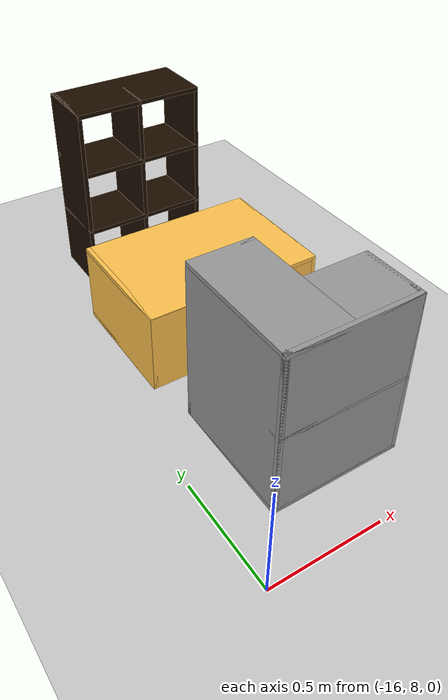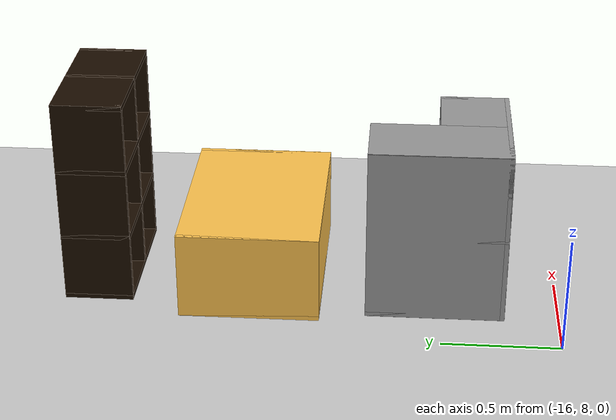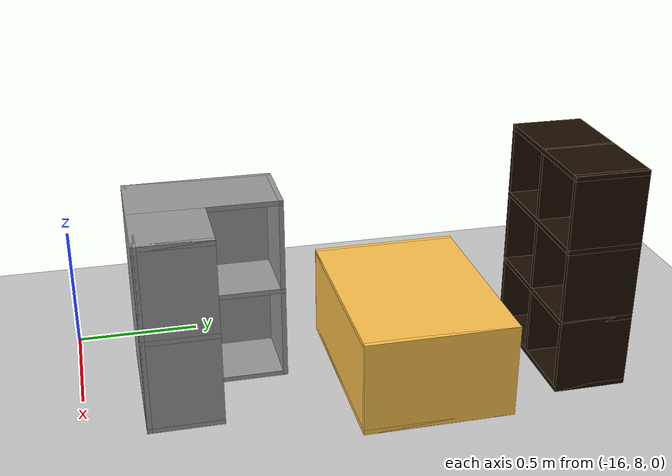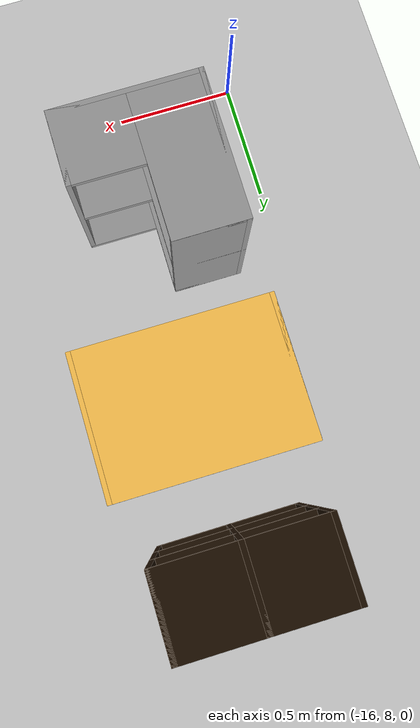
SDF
<sdf version="1.6">
 <world name="default">
  <model name="ground_plane">
   <static>1</static>
   <link name="link">
    <collision name="collision">
     <geometry><plane><normal>0 0 1</normal><size>100 100</size></plane></geometry>
     <surface><friction><ode><mu>100</mu><mu2>50</mu2></ode></friction></surface>
    </collision>
    <visual name="visual">
     <cast_shadows>0</cast_shadows>
     <geometry><plane><normal>0 0 1</normal><size>100 100</size></plane></geometry>
     <material>
      <script><uri>file://media/materials/scripts/gazebo.material</uri><name>Gazebo/Grey</name></script>
     </material>
    </visual>
   </link>
  </model>
  <model name="6_Cube_StorageE">
   <link name="Wall_0">
    <pose>0 0 0.01 0 -0 0</pose>
    <inertial>
     <mass>1.6201</mass>
     <inertia><ixx>0.0119</ixx><iyy>0.0631</iyy><izz>0.0513</izz><ixy>0</ixy><ixz>0</ixz><iyz>0</iyz></inertia>
    </inertial>
    <collision name="Wall_0_Collision"><geometry><box><size>0.616 0.296 0.02</size></box></geometry></collision>
    <visual name="Wall_0_Visual">
     <geometry><box><size>0.616 0.296 0.02</size></box></geometry>
     <material>
      <script><uri>file://media/materials/scripts/gazebo.material</uri><name>Gazebo/Grey</name></script>
      <ambient>0.105882 0.0509804 0 1</ambient>
     </material>
    </visual>
   </link>
   <joint name="0_2" type="fixed">
    <pose>-0.308 0 0 0 -0 0</pose>
    <parent>Wall_2</parent>
    <child>Wall_0</child>
    <axis>
     <xyz>1 0 0</xyz>
     <use_parent_model_frame>0</use_parent_model_frame>
     <limit><lower>-1e+16</lower><upper>1e+16</upper></limit>
    </axis>
   </joint>
   <joint name="0_12" type="fixed">
    <parent>Wall_12</parent>
    <child>Wall_0</child>
    <axis>
     <xyz>0 0 1</xyz>
     <use_parent_model_frame>0</use_parent_model_frame>
     <limit><lower>-1e+16</lower><upper>1e+16</upper></limit>
    </axis>
   </joint>
   <joint name="0_4" type="fixed">
    <pose>0.308 0 0 0 -0 0</pose>
    <parent>Wall_4</parent>
    <child>Wall_0</child>
    <axis>
     <xyz>1 0 0</xyz>
     <use_parent_model_frame>0</use_parent_model_frame>
     <limit><lower>-1e+16</lower><upper>1e+16</upper></limit>
    </axis>
   </joint>
   <link name="Wall_10">
    <pose>0 0 0.61 0 -0 0</pose>
    <inertial>
     <mass>1.6201</mass>
     <inertia><ixx>0.0119</ixx><iyy>0.0631</iyy><izz>0.0513</izz><ixy>0</ixy><ixz>0</ixz><iyz>0</iyz></inertia>
    </inertial>
    <collision name="Wall_10_Collision"><geometry><box><size>0.616 0.296 0.02</size></box></geometry></collision>
    <visual name="Wall_10_Visual">
     <geometry><box><size>0.616 0.296 0.02</size></box></geometry>
     <material>
      <script><uri>file://media/materials/scripts/gazebo.material</uri><name>Gazebo/Grey</name></script>
      <ambient>0.105882 0.0509804 0 1</ambient>
     </material>
    </visual>
   </link>
   <joint name="10_2" type="fixed">
    <pose>-0.308 0 0 0 -0 0</pose>
    <parent>Wall_2</parent>
    <child>Wall_10</child>
    <axis>
     <xyz>1 0 0</xyz>
     <use_parent_model_frame>0</use_parent_model_frame>
     <limit><lower>-1e+16</lower><upper>1e+16</upper></limit>
    </axis>
   </joint>
   <joint name="10_12" type="fixed">
    <parent>Wall_12</parent>
    <child>Wall_10</child>
    <axis>
     <xyz>0 0 1</xyz>
     <use_parent_model_frame>0</use_parent_model_frame>
     <limit><lower>-1e+16</lower><upper>1e+16</upper></limit>
    </axis>
   </joint>
   <joint name="10_4" type="fixed">
    <pose>0.308 0 0 0 -0 0</pose>
    <parent>Wall_4</parent>
    <child>Wall_10</child>
    <axis>
     <xyz>1 0 0</xyz>
     <use_parent_model_frame>0</use_parent_model_frame>
     <limit><lower>-1e+16</lower><upper>1e+16</upper></limit>
    </axis>
   </joint>
   <link name="Wall_12">
    <pose>0 0 0.4575 0 -0 0</pose>
    <inertial>
     <mass>2.4065</mass>
     <inertia><ixx>0.0177</ixx><iyy>0.1855</iyy><izz>0.168</izz><ixy>0</ixy><ixz>0</ixz><iyz>0</iyz></inertia>
    </inertial>
    <collision name="Wall_12_Collision"><geometry><box><size>0.02 0.296 0.915</size></box></geometry></collision>
    <visual name="Wall_12_Visual">
     <geometry><box><size>0.02 0.296 0.915</size></box></geometry>
     <material>
      <script><uri>file://media/materials/scripts/gazebo.material</uri><name>Gazebo/Grey</name></script>
      <ambient>0.105882 0.0509804 0 1</ambient>
     </material>
    </visual>
   </link>
   <link name="Wall_2">
    <pose>-0.298 0 0.4575 0 -0 0</pose>
    <inertial>
     <mass>2.4065</mass>
     <inertia><ixx>0.0177</ixx><iyy>0.1855</iyy><izz>0.168</izz><ixy>0</ixy><ixz>0</ixz><iyz>0</iyz></inertia>
    </inertial>
    <collision name="Wall_2_Collision"><geometry><box><size>0.02 0.296 0.915</size></box></geometry></collision>
    <visual name="Wall_2_Visual">
     <geometry><box><size>0.02 0.296 0.915</size></box></geometry>
     <material>
      <script><uri>file://media/materials/scripts/gazebo.material</uri><name>Gazebo/Grey</name></script>
      <ambient>0.105882 0.0509804 0 1</ambient>
     </material>
    </visual>
   </link>
   <link name="Wall_4">
    <pose>0.298 0 0.4575 0 -0 0</pose>
    <inertial>
     <mass>2.4065</mass>
     <inertia><ixx>0.0177</ixx><iyy>0.1855</iyy><izz>0.168</izz><ixy>0</ixy><ixz>0</ixz><iyz>0</iyz></inertia>
    </inertial>
    <collision name="Wall_4_Collision"><geometry><box><size>0.02 0.296 0.915</size></box></geometry></collision>
    <visual name="Wall_4_Visual">
     <geometry><box><size>0.02 0.296 0.915</size></box></geometry>
     <material>
      <script><uri>file://media/materials/scripts/gazebo.material</uri><name>Gazebo/Grey</name></script>
      <ambient>0.105882 0.0509804 0 1</ambient>
     </material>
    </visual>
   </link>
   <link name="Wall_6">
    <pose>0 0 0.905 0 -0 0</pose>
    <inertial>
     <mass>1.6201</mass>
     <inertia><ixx>0.0119</ixx><iyy>0.0631</iyy><izz>0.0513</izz><ixy>0</ixy><ixz>0</ixz><iyz>0</iyz></inertia>
    </inertial>
    <collision name="Wall_6_Collision"><geometry><box><size>0.616 0.296 0.02</size></box></geometry></collision>
    <visual name="Wall_6_Visual">
     <geometry><box><size>0.616 0.296 0.02</size></box></geometry>
     <material>
      <script><uri>file://media/materials/scripts/gazebo.material</uri><name>Gazebo/Grey</name></script>
      <ambient>0.105882 0.0509804 0 1</ambient>
     </material>
    </visual>
   </link>
   <joint name="6_2" type="fixed">
    <pose>-0.308 0 0 0 -0 0</pose>
    <parent>Wall_2</parent>
    <child>Wall_6</child>
    <axis>
     <xyz>2 0 0</xyz>
     <use_parent_model_frame>0</use_parent_model_frame>
     <limit><lower>-1e+16</lower><upper>1e+16</upper></limit>
    </axis>
   </joint>
   <joint name="6_12" type="fixed">
    <parent>Wall_12</parent>
    <child>Wall_6</child>
    <axis>
     <xyz>0 0 1</xyz>
     <use_parent_model_frame>0</use_parent_model_frame>
     <limit><lower>-1e+16</lower><upper>1e+16</upper></limit>
    </axis>
   </joint>
   <joint name="6_4" type="fixed">
    <pose>0.308 0 0 0 -0 0</pose>
    <parent>Wall_4</parent>
    <child>Wall_6</child>
    <axis>
     <xyz>1 0 0</xyz>
     <use_parent_model_frame>0</use_parent_model_frame>
     <limit><lower>-1e+16</lower><upper>1e+16</upper></limit>
    </axis>
   </joint>
   <link name="Wall_8">
    <pose>0 0 0.305 0 -0 0</pose>
    <inertial>
     <mass>1.6201</mass>
     <inertia><ixx>0.0119</ixx><iyy>0.0631</iyy><izz>0.0513</izz><ixy>0</ixy><ixz>0</ixz><iyz>0</iyz></inertia>
    </inertial>
    <collision name="Wall_8_Collision"><geometry><box><size>0.616 0.296 0.02</size></box></geometry></collision>
    <visual name="Wall_8_Visual">
     <geometry><box><size>0.616 0.296 0.02</size></box></geometry>
     <material>
      <script><uri>file://media/materials/scripts/gazebo.material</uri><name>Gazebo/Grey</name></script>
      <ambient>0.105882 0.0509804 0 1</ambient>
     </material>
    </visual>
   </link>
   <joint name="8_2" type="fixed">
    <pose>-0.308 0 0 0 -0 0</pose>
    <parent>Wall_2</parent>
    <child>Wall_8</child>
    <axis>
     <xyz>1 0 0</xyz>
     <use_parent_model_frame>0</use_parent_model_frame>
     <limit><lower>-1e+16</lower><upper>1e+16</upper></limit>
    </axis>
   </joint>
   <joint name="8_12" type="fixed">
    <parent>Wall_12</parent>
    <child>Wall_8</child>
    <axis>
     <xyz>0 0 1</xyz>
     <use_parent_model_frame>0</use_parent_model_frame>
     <limit><lower>-1e+16</lower><upper>1e+16</upper></limit>
    </axis>
   </joint>
   <joint name="8_4" type="fixed">
    <pose>0.308 0 0 0 -0 0</pose>
    <parent>Wall_4</parent>
    <child>Wall_8</child>
    <axis>
     <xyz>1 0 0</xyz>
     <use_parent_model_frame>0</use_parent_model_frame>
     <limit><lower>-1e+16</lower><upper>1e+16</upper></limit>
    </axis>
   </joint>
   <static>1</static>
   <pose>-15.4401 9.97642 0 0 -0 0</pose>
  </model>
  <model name="Fridge_Cabinet_33x15">
   <link name="Wall_17">
    <pose>0 0 0.01 0 -0 0</pose>
    <inertial>
     <mass>4.8627</mass>
     <inertia><ixx>0.146</ixx><iyy>0.4318</iyy><izz>0.2861</izz><ixy>0</ixy><ixz>0</ixz><iyz>0</iyz></inertia>
    </inertial>
    <collision name="Wall_17_Collision"><geometry><box><size>0.84 0.6 0.02</size></box></geometry></collision>
    <visual name="Wall_17_Visual">
     <geometry><box><size>0.84 0.6 0.02</size></box></geometry>
     <material>
      <script><uri>file://media/materials/scripts/gazebo.material</uri><name>Gazebo/Grey</name></script>
      <ambient>1 0.764706 0.305882 1</ambient>
     </material>
    </visual>
   </link>
   <joint name="17_21" type="fixed">
    <pose>0.42 0 0 0 -0 0</pose>
    <parent>Wall_21</parent>
    <child>Wall_17</child>
    <axis>
     <xyz>1 0 0</xyz>
     <use_parent_model_frame>0</use_parent_model_frame>
     <limit><lower>-1e+16</lower><upper>1e+16</upper></limit>
    </axis>
   </joint>
   <joint name="17_19" type="fixed">
    <pose>-0.42 0 0 0 -0 0</pose>
    <parent>Wall_19</parent>
    <child>Wall_17</child>
    <axis>
     <xyz>1 0 0</xyz>
     <use_parent_model_frame>0</use_parent_model_frame>
     <limit><lower>-1e+16</lower><upper>1e+16</upper></limit>
    </axis>
   </joint>
   <joint name="17_25" type="fixed">
    <pose>0 -0.3 0 0 -0 0</pose>
    <parent>Wall_25</parent>
    <child>Wall_17</child>
    <axis>
     <xyz>0 1 0</xyz>
     <use_parent_model_frame>0</use_parent_model_frame>
     <limit><lower>-1e+16</lower><upper>1e+16</upper></limit>
    </axis>
   </joint>
   <link name="Wall_19">
    <pose>-0.41 0 0.192 0 -0 0</pose>
    <inertial>
     <mass>2.223</mass>
     <inertia><ixx>0.0668</ixx><iyy>0.094</iyy><izz>0.0274</izz><ixy>0</ixy><ixz>0</ixz><iyz>0</iyz></inertia>
    </inertial>
    <collision name="Wall_19_Collision"><geometry><box><size>0.02 0.6 0.384</size></box></geometry></collision>
    <visual name="Wall_19_Visual">
     <geometry><box><size>0.02 0.6 0.384</size></box></geometry>
     <material>
      <script><uri>file://media/materials/scripts/gazebo.material</uri><name>Gazebo/Grey</name></script>
      <ambient>1 0.764706 0.305882 1</ambient>
     </material>
    </visual>
   </link>
   <link name="Wall_21">
    <pose>0.41 0 0.192 0 -0 0</pose>
    <inertial>
     <mass>2.223</mass>
     <inertia><ixx>0.0668</ixx><iyy>0.094</iyy><izz>0.0274</izz><ixy>0</ixy><ixz>0</ixz><iyz>0</iyz></inertia>
    </inertial>
    <collision name="Wall_21_Collision"><geometry><box><size>0.02 0.6 0.384</size></box></geometry></collision>
    <visual name="Wall_21_Visual">
     <geometry><box><size>0.02 0.6 0.384</size></box></geometry>
     <material>
      <script><uri>file://media/materials/scripts/gazebo.material</uri><name>Gazebo/Grey</name></script>
      <ambient>1 0.764706 0.305882 1</ambient>
     </material>
    </visual>
   </link>
   <link name="Wall_23">
    <pose>0 0 0.374 0 -0 0</pose>
    <inertial>
     <mass>4.8627</mass>
     <inertia><ixx>0.146</ixx><iyy>0.4318</iyy><izz>0.2861</izz><ixy>0</ixy><ixz>0</ixz><iyz>0</iyz></inertia>
    </inertial>
    <collision name="Wall_23_Collision"><geometry><box><size>0.84 0.6 0.02</size></box></geometry></collision>
    <visual name="Wall_23_Visual">
     <geometry><box><size>0.84 0.6 0.02</size></box></geometry>
     <material>
      <script><uri>file://media/materials/scripts/gazebo.material</uri><name>Gazebo/Grey</name></script>
      <ambient>1 0.764706 0.305882 1</ambient>
     </material>
    </visual>
   </link>
   <joint name="23_21" type="fixed">
    <pose>0.42 0 0 0 -0 0</pose>
    <parent>Wall_21</parent>
    <child>Wall_23</child>
    <axis>
     <xyz>0 0 1</xyz>
     <use_parent_model_frame>0</use_parent_model_frame>
     <limit><lower>-1e+16</lower><upper>1e+16</upper></limit>
    </axis>
   </joint>
   <joint name="23_19" type="fixed">
    <pose>-0.42 0 0 0 -0 0</pose>
    <parent>Wall_19</parent>
    <child>Wall_23</child>
    <axis>
     <xyz>0 0 1</xyz>
     <use_parent_model_frame>0</use_parent_model_frame>
     <limit><lower>-1e+16</lower><upper>1e+16</upper></limit>
    </axis>
   </joint>
   <joint name="23_25" type="fixed">
    <pose>0 -0.3 0 0 -0 0</pose>
    <parent>Wall_25</parent>
    <child>Wall_23</child>
    <axis>
     <xyz>0 0 1</xyz>
     <use_parent_model_frame>0</use_parent_model_frame>
     <limit><lower>-1e+16</lower><upper>1e+16</upper></limit>
    </axis>
   </joint>
   <link name="Wall_25">
    <pose>0 -0.29 0.19 0 -0 0</pose>
    <inertial>
     <mass>3.0651</mass>
     <inertia><ixx>0.037</ixx><iyy>0.1786</iyy><izz>0.2154</izz><ixy>0</ixy><ixz>0</ixz><iyz>0</iyz></inertia>
    </inertial>
    <collision name="Wall_25_Collision"><geometry><box><size>0.836 0.02 0.38</size></box></geometry></collision>
    <visual name="Wall_25_Visual">
     <geometry><box><size>0.836 0.02 0.38</size></box></geometry>
     <material>
      <script><uri>file://media/materials/scripts/gazebo.material</uri><name>Gazebo/Grey</name></script>
      <ambient>1 0.764706 0.305882 1</ambient>
     </material>
    </visual>
   </link>
   <joint name="25_21" type="fixed">
    <pose>0.42 0 0 0 -0 0</pose>
    <parent>Wall_21</parent>
    <child>Wall_25</child>
    <axis>
     <xyz>0 1 0</xyz>
     <use_parent_model_frame>0</use_parent_model_frame>
     <limit><lower>-1e+16</lower><upper>1e+16</upper></limit>
    </axis>
   </joint>
   <joint name="25_19" type="fixed">
    <pose>-0.42 0 0 0 -0 0</pose>
    <parent>Wall_19</parent>
    <child>Wall_25</child>
    <axis>
     <xyz>0 1 0</xyz>
     <use_parent_model_frame>0</use_parent_model_frame>
     <limit><lower>-1e+16</lower><upper>1e+16</upper></limit>
    </axis>
   </joint>
   <static>1</static>
   <pose>-15.4404 9.31474 0 0 -0 0</pose>
  </model>
  <model name="Wall_Cabinet_Coin_24x30W">
   <link name="Wall_10">
    <pose>0.286 -0.148 0.384 0 -0 0</pose>
    <inertial>
     <mass>2.1259</mass>
     <inertia><ixx>0.0158</ixx><iyy>0.1202</iyy><izz>0.1046</izz><ixy>0</ixy><ixz>0</ixz><iyz>0</iyz></inertia>
    </inertial>
    <collision name="Wall_10_Collision"><geometry><box><size>0.02 0.296 0.768</size></box></geometry></collision>
    <visual name="Wall_10_Visual">
     <geometry><box><size>0.02 0.296 0.768</size></box></geometry>
     <material>
      <script><uri>file://media/materials/scripts/gazebo.material</uri><name>Gazebo/Grey</name></script>
      <ambient>1 1 1 1</ambient>
     </material>
    </visual>
   </link>
   <joint name="10_16" type="fixed">
    <pose>0 0 -0.374 0 -0 0</pose>
    <parent>Wall_16</parent>
    <child>Wall_10</child>
    <axis>
     <xyz>1 0 0</xyz>
     <use_parent_model_frame>0</use_parent_model_frame>
     <limit><lower>-1e+16</lower><upper>1e+16</upper></limit>
    </axis>
   </joint>
   <joint name="10_14" type="fixed">
    <parent>Wall_14</parent>
    <child>Wall_10</child>
    <axis>
     <xyz>1 0 0</xyz>
     <use_parent_model_frame>0</use_parent_model_frame>
     <limit><lower>-1e+16</lower><upper>1e+16</upper></limit>
    </axis>
   </joint>
   <joint name="10_12" type="fixed">
    <pose>0 0 0.374 0 -0 0</pose>
    <parent>Wall_12</parent>
    <child>Wall_10</child>
    <axis>
     <xyz>1 0 0</xyz>
     <use_parent_model_frame>0</use_parent_model_frame>
     <limit><lower>-1e+16</lower><upper>1e+16</upper></limit>
    </axis>
   </joint>
   <joint name="10_29" type="fixed">
    <pose>0 -0.148 0 0 -0 0</pose>
    <parent>Wall_29</parent>
    <child>Wall_10</child>
    <axis>
     <xyz>1 0 0</xyz>
     <use_parent_model_frame>0</use_parent_model_frame>
     <limit><lower>-1e+16</lower><upper>1e+16</upper></limit>
    </axis>
   </joint>
   <link name="Wall_12">
    <pose>0.148 -0.148 0.758 0 -0 0</pose>
    <inertial>
     <mass>0.8802</mass>
     <inertia><ixx>0.0065</ixx><iyy>0.0139</iyy><izz>0.0074</izz><ixy>0</ixy><ixz>0</ixz><iyz>0</iyz></inertia>
    </inertial>
    <collision name="Wall_12_Collision"><geometry><box><size>0.296 0.296 0.02</size></box></geometry></collision>
    <visual name="Wall_12_Visual">
     <geometry><box><size>0.296 0.296 0.02</size></box></geometry>
     <material>
      <script><uri>file://media/materials/scripts/gazebo.material</uri><name>Gazebo/Grey</name></script>
      <ambient>1 1 1 1</ambient>
     </material>
    </visual>
   </link>
   <joint name="12_29" type="fixed">
    <pose>0 -0.148 0 0 -0 0</pose>
    <parent>Wall_29</parent>
    <child>Wall_12</child>
    <axis>
     <xyz>0 0 1</xyz>
     <use_parent_model_frame>0</use_parent_model_frame>
     <limit><lower>-1e+16</lower><upper>1e+16</upper></limit>
    </axis>
   </joint>
   <link name="Wall_14">
    <pose>0.148 -0.148 0.384 0 -0 0</pose>
    <inertial>
     <mass>0.8802</mass>
     <inertia><ixx>0.0065</ixx><iyy>0.0139</iyy><izz>0.0074</izz><ixy>0</ixy><ixz>0</ixz><iyz>0</iyz></inertia>
    </inertial>
    <collision name="Wall_14_Collision"><geometry><box><size>0.296 0.296 0.02</size></box></geometry></collision>
    <visual name="Wall_14_Visual">
     <geometry><box><size>0.296 0.296 0.02</size></box></geometry>
     <material>
      <script><uri>file://media/materials/scripts/gazebo.material</uri><name>Gazebo/Grey</name></script>
      <ambient>1 1 1 1</ambient>
     </material>
    </visual>
   </link>
   <joint name="14_29" type="fixed">
    <pose>0 -0.148 0 0 -0 0</pose>
    <parent>Wall_29</parent>
    <child>Wall_14</child>
    <axis>
     <xyz>0 1 0</xyz>
     <use_parent_model_frame>0</use_parent_model_frame>
     <limit><lower>-1e+16</lower><upper>1e+16</upper></limit>
    </axis>
   </joint>
   <link name="Wall_16">
    <pose>0.148 -0.148 0.01 0 -0 0</pose>
    <inertial>
     <mass>0.8802</mass>
     <inertia><ixx>0.0065</ixx><iyy>0.0139</iyy><izz>0.0074</izz><ixy>0</ixy><ixz>0</ixz><iyz>0</iyz></inertia>
    </inertial>
    <collision name="Wall_16_Collision"><geometry><box><size>0.296 0.296 0.02</size></box></geometry></collision>
    <visual name="Wall_16_Visual">
     <geometry><box><size>0.296 0.296 0.02</size></box></geometry>
     <material>
      <script><uri>file://media/materials/scripts/gazebo.material</uri><name>Gazebo/Grey</name></script>
      <ambient>1 1 1 1</ambient>
     </material>
    </visual>
   </link>
   <joint name="16_29" type="fixed">
    <pose>0 -0.148 0 0 -0 0</pose>
    <parent>Wall_29</parent>
    <child>Wall_16</child>
    <axis>
     <xyz>0 1 0</xyz>
     <use_parent_model_frame>0</use_parent_model_frame>
     <limit><lower>-1e+16</lower><upper>1e+16</upper></limit>
    </axis>
   </joint>
   <link name="Wall_18">
    <pose>-0.148 0 0.01 0 -0 0</pose>
    <inertial>
     <mass>1.6525</mass>
     <inertia><ixx>0.0491</ixx><iyy>0.0613</iyy><izz>0.0123</izz><ixy>0</ixy><ixz>0</ixz><iyz>0</iyz></inertia>
    </inertial>
    <collision name="Wall_18_Collision"><geometry><box><size>0.296 0.592 0.02</size></box></geometry></collision>
    <visual name="Wall_18_Visual">
     <geometry><box><size>0.296 0.592 0.02</size></box></geometry>
     <material>
      <script><uri>file://media/materials/scripts/gazebo.material</uri><name>Gazebo/Grey</name></script>
      <ambient>1 1 1 1</ambient>
     </material>
    </visual>
   </link>
   <joint name="18_16" type="fixed">
    <pose>0.148 -0.148 0 0 -0 0</pose>
    <parent>Wall_16</parent>
    <child>Wall_18</child>
    <axis>
     <xyz>1 0 0</xyz>
     <use_parent_model_frame>0</use_parent_model_frame>
     <limit><lower>-1e+16</lower><upper>1e+16</upper></limit>
    </axis>
   </joint>
   <joint name="18_29" type="fixed">
    <pose>0 -0.296 0 0 -0 0</pose>
    <parent>Wall_29</parent>
    <child>Wall_18</child>
    <axis>
     <xyz>0 1 0</xyz>
     <use_parent_model_frame>0</use_parent_model_frame>
     <limit><lower>-1e+16</lower><upper>1e+16</upper></limit>
    </axis>
   </joint>
   <joint name="18_27" type="fixed">
    <pose>-0.148 0 0 0 -0 0</pose>
    <parent>Wall_27</parent>
    <child>Wall_18</child>
    <axis>
     <xyz>1 0 0</xyz>
     <use_parent_model_frame>0</use_parent_model_frame>
     <limit><lower>-1e+16</lower><upper>1e+16</upper></limit>
    </axis>
   </joint>
   <joint name="18_30" type="fixed">
    <pose>0 0.296 0 0 -0 0</pose>
    <parent>Wall_30</parent>
    <child>Wall_18</child>
    <axis>
     <xyz>0 1 0</xyz>
     <use_parent_model_frame>0</use_parent_model_frame>
     <limit><lower>-1e+16</lower><upper>1e+16</upper></limit>
    </axis>
   </joint>
   <link name="Wall_20">
    <pose>-0.148 0 0.384 0 -0 0</pose>
    <inertial>
     <mass>1.6525</mass>
     <inertia><ixx>0.0491</ixx><iyy>0.0613</iyy><izz>0.0123</izz><ixy>0</ixy><ixz>0</ixz><iyz>0</iyz></inertia>
    </inertial>
    <collision name="Wall_20_Collision"><geometry><box><size>0.296 0.592 0.02</size></box></geometry></collision>
    <visual name="Wall_20_Visual">
     <geometry><box><size>0.296 0.592 0.02</size></box></geometry>
     <material>
      <script><uri>file://media/materials/scripts/gazebo.material</uri><name>Gazebo/Grey</name></script>
      <ambient>1 1 1 1</ambient>
     </material>
    </visual>
   </link>
   <joint name="20_14" type="fixed">
    <pose>0.148 -0.148 0 0 -0 0</pose>
    <parent>Wall_14</parent>
    <child>Wall_20</child>
    <axis>
     <xyz>1 0 0</xyz>
     <use_parent_model_frame>0</use_parent_model_frame>
     <limit><lower>-1e+16</lower><upper>1e+16</upper></limit>
    </axis>
   </joint>
   <joint name="20_29" type="fixed">
    <pose>0 -0.296 0 0 -0 0</pose>
    <parent>Wall_29</parent>
    <child>Wall_20</child>
    <axis>
     <xyz>0 1 0</xyz>
     <use_parent_model_frame>0</use_parent_model_frame>
     <limit><lower>-1e+16</lower><upper>1e+16</upper></limit>
    </axis>
   </joint>
   <joint name="20_27" type="fixed">
    <pose>-0.148 0 0 0 -0 0</pose>
    <parent>Wall_27</parent>
    <child>Wall_20</child>
    <axis>
     <xyz>1 0 0</xyz>
     <use_parent_model_frame>0</use_parent_model_frame>
     <limit><lower>-1e+16</lower><upper>1e+16</upper></limit>
    </axis>
   </joint>
   <joint name="20_30" type="fixed">
    <pose>0 0.296 0 0 -0 0</pose>
    <parent>Wall_30</parent>
    <child>Wall_20</child>
    <axis>
     <xyz>0 1 0</xyz>
     <use_parent_model_frame>0</use_parent_model_frame>
     <limit><lower>-1e+16</lower><upper>1e+16</upper></limit>
    </axis>
   </joint>
   <link name="Wall_22">
    <pose>-0.148 0 0.758 0 -0 0</pose>
    <inertial>
     <mass>1.6525</mass>
     <inertia><ixx>0.0491</ixx><iyy>0.0613</iyy><izz>0.0123</izz><ixy>0</ixy><ixz>0</ixz><iyz>0</iyz></inertia>
    </inertial>
    <collision name="Wall_22_Collision"><geometry><box><size>0.296 0.592 0.02</size></box></geometry></collision>
    <visual name="Wall_22_Visual">
     <geometry><box><size>0.296 0.592 0.02</size></box></geometry>
     <material>
      <script><uri>file://media/materials/scripts/gazebo.material</uri><name>Gazebo/Grey</name></script>
      <ambient>1 1 1 1</ambient>
     </material>
    </visual>
   </link>
   <joint name="22_12" type="fixed">
    <pose>0.148 -0.148 0 0 -0 0</pose>
    <parent>Wall_12</parent>
    <child>Wall_22</child>
    <axis>
     <xyz>1 0 0</xyz>
     <use_parent_model_frame>0</use_parent_model_frame>
     <limit><lower>-1e+16</lower><upper>1e+16</upper></limit>
    </axis>
   </joint>
   <joint name="22_29" type="fixed">
    <pose>0 -0.296 0 0 -0 0</pose>
    <parent>Wall_29</parent>
    <child>Wall_22</child>
    <axis>
     <xyz>0 1 0</xyz>
     <use_parent_model_frame>0</use_parent_model_frame>
     <limit><lower>-1e+16</lower><upper>1e+16</upper></limit>
    </axis>
   </joint>
   <joint name="22_27" type="fixed">
    <pose>-0.148 0 0 0 -0 0</pose>
    <parent>Wall_27</parent>
    <child>Wall_22</child>
    <axis>
     <xyz>1 0 0</xyz>
     <use_parent_model_frame>0</use_parent_model_frame>
     <limit><lower>-1e+16</lower><upper>1e+16</upper></limit>
    </axis>
   </joint>
   <joint name="22_30" type="fixed">
    <pose>0 0.296 0 0 -0 0</pose>
    <parent>Wall_30</parent>
    <child>Wall_22</child>
    <axis>
     <xyz>0 1 0</xyz>
     <use_parent_model_frame>0</use_parent_model_frame>
     <limit><lower>-1e+16</lower><upper>1e+16</upper></limit>
    </axis>
   </joint>
   <link name="Wall_27">
    <pose>-0.286 0 0.384 0 -0 0</pose>
    <inertial>
     <mass>4.2589</mass>
     <inertia><ixx>0.1266</ixx><iyy>0.3358</iyy><izz>0.2095</izz><ixy>0</ixy><ixz>0</ixz><iyz>0</iyz></inertia>
    </inertial>
    <collision name="Wall_27_Collision"><geometry><box><size>0.02 0.592 0.768</size></box></geometry></collision>
    <visual name="Wall_27_Visual">
     <geometry><box><size>0.02 0.592 0.768</size></box></geometry>
     <material>
      <script><uri>file://media/materials/scripts/gazebo.material</uri><name>Gazebo/Grey</name></script>
      <ambient>1 1 1 1</ambient>
     </material>
    </visual>
   </link>
   <joint name="27_30" type="fixed">
    <pose>0 0.296 0 0 -0 0</pose>
    <parent>Wall_30</parent>
    <child>Wall_27</child>
    <axis>
     <xyz>0 1 0</xyz>
     <use_parent_model_frame>0</use_parent_model_frame>
     <limit><lower>-1e+16</lower><upper>1e+16</upper></limit>
    </axis>
   </joint>
   <link name="Wall_29">
    <pose>0 -0.286 0.384 0 -0 0</pose>
    <inertial>
     <mass>4.3176</mass>
     <inertia><ixx>0.134</ixx><iyy>0.2091</iyy><izz>0.3428</izz><ixy>0</ixy><ixz>0</ixz><iyz>0</iyz></inertia>
    </inertial>
    <collision name="Wall_29_Collision"><geometry><box><size>0.592 0.02 0.768</size></box></geometry></collision>
    <visual name="Wall_29_Visual">
     <geometry><box><size>0.592 0.02 0.768</size></box></geometry>
     <material>
      <script><uri>file://media/materials/scripts/gazebo.material</uri><name>Gazebo/Grey</name></script>
      <ambient>1 1 1 1</ambient>
     </material>
    </visual>
   </link>
   <link name="Wall_30">
    <pose>-0.148 0.286 0.384 0 -0 0</pose>
    <inertial>
     <mass>2.1093</mass>
     <inertia><ixx>0.1021</ixx><iyy>0.0157</iyy><izz>0.1177</izz><ixy>0</ixy><ixz>0</ixz><iyz>0</iyz></inertia>
    </inertial>
    <collision name="Wall_30_Collision"><geometry><box><size>0.296 0.02 0.768</size></box></geometry></collision>
    <visual name="Wall_30_Visual">
     <geometry><box><size>0.296 0.02 0.768</size></box></geometry>
     <material>
      <script><uri>file://media/materials/scripts/gazebo.material</uri><name>Gazebo/Grey</name></script>
      <ambient>1 1 1 1</ambient>
     </material>
    </visual>
   </link>
   <static>1</static>
   <pose>-15.5111 8.52551 0 0 -0 0</pose>
  </model>
 </world>
</sdf>
